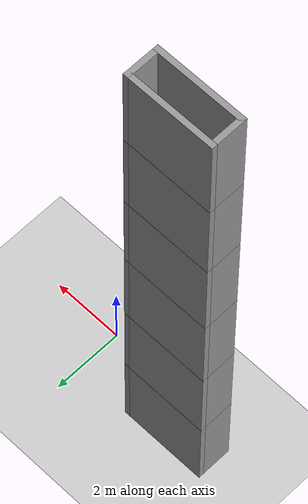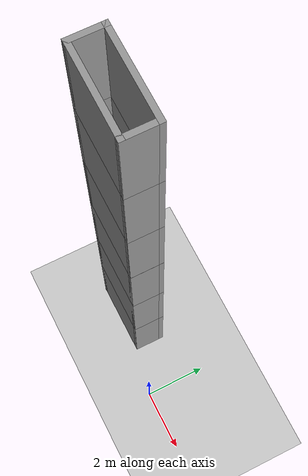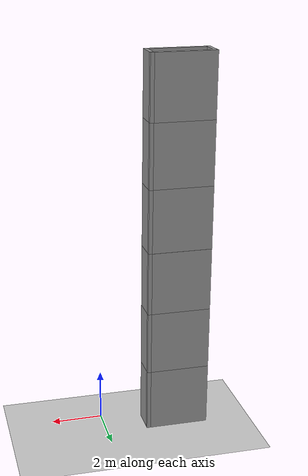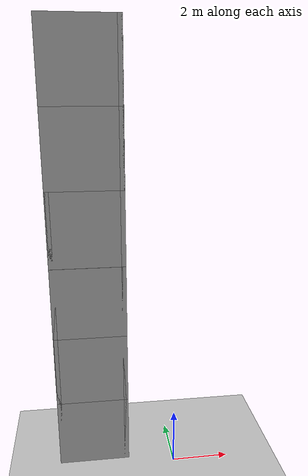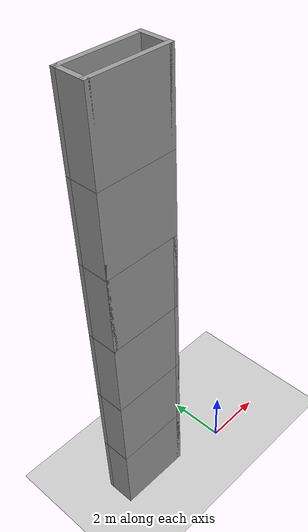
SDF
<sdf version="1.6">
 <world name="default">
  <light name="sun" type="directional">
   <pose>0 0 10 0 -0 0</pose>
   <diffuse>0.8 0.8 0.8 1</diffuse>
   <specular>0.1 0.1 0.1 1</specular>
   <attenuation>
    <range>1000</range>
    <constant>0.9</constant>
    <linear>0.01</linear>
    <quadratic>0.001</quadratic>
   </attenuation>
   <direction>-0.5 0.5 -1</direction>
  </light>
  <model name="ground_plane">
   <static>1</static>
   <link name="link">
    <collision name="collision">
     <geometry><plane><normal>0 0 1</normal><size>100 100</size></plane></geometry>
     <surface><friction><ode><mu>100</mu><mu2>50</mu2></ode></friction></surface>
    </collision>
    <visual name="visual">
     <cast_shadows>0</cast_shadows>
     <geometry><plane><normal>0 0 1</normal><size>100 100</size></plane></geometry>
     <material>
      <script><uri>file://media/materials/scripts/gazebo.material</uri><name>Gazebo/Grey</name></script>
     </material>
    </visual>
   </link>
  </model>
  <gravity>0 0 -9.8</gravity>
  <magnetic_field>6e-06 2.3e-05 -4.2e-05</magnetic_field>
  <atmosphere type="adiabatic"/>
  <physics name="default_physics" default="0" type="ode">
   <max_step_size>0.001</max_step_size>
   <real_time_factor>1</real_time_factor>
   <real_time_update_rate>1000</real_time_update_rate>
  </physics>
  <scene><ambient>0.4 0.4 0.4 1</ambient><background>0.7 0.7 0.7 1</background><shadows>1</shadows></scene>
  <spherical_coordinates>
   <surface_model>EARTH_WGS84</surface_model>
   <latitude_deg>0</latitude_deg>
   <longitude_deg>0</longitude_deg>
   <elevation>0</elevation>
   <heading_deg>0</heading_deg>
  </spherical_coordinates>
  <model name="column25">
   <pose>-2.86373 0.823993 0 0 -0 0</pose>
   <link name="Wall_0">
    <collision name="Wall_0_Collision">
     <geometry><box><size>2.5 0.15 2.5</size></box></geometry>
     <pose>0 0 1.25 0 -0 0</pose>
    </collision>
    <visual name="Wall_0_Visual">
     <pose>0 0 1.25 0 -0 0</pose>
     <geometry><box><size>2.5 0.15 2.5</size></box></geometry>
     <material>
      <script><uri>file://media/materials/scripts/gazebo.material</uri><name>Gazebo/Grey</name></script>
      <ambient>1 1 1 1</ambient>
     </material>
    </visual>
    <pose>0 -0.425 0 0 -0 0</pose>
   </link>
   <link name="Wall_1">
    <collision name="Wall_1_Collision">
     <geometry><box><size>1 0.15 2.5</size></box></geometry>
     <pose>0 0 1.25 0 -0 0</pose>
    </collision>
    <visual name="Wall_1_Visual">
     <pose>0 0 1.25 0 -0 0</pose>
     <geometry><box><size>1 0.15 2.5</size></box></geometry>
     <material>
      <script><uri>file://media/materials/scripts/gazebo.material</uri><name>Gazebo/Grey</name></script>
      <ambient>1 1 1 1</ambient>
     </material>
    </visual>
    <pose>1.175 0 0 0 -0 1.5708</pose>
   </link>
   <link name="Wall_2">
    <collision name="Wall_2_Collision">
     <geometry><box><size>2.5 0.15 2.5</size></box></geometry>
     <pose>0 0 1.25 0 -0 0</pose>
    </collision>
    <visual name="Wall_2_Visual">
     <pose>0 0 1.25 0 -0 0</pose>
     <geometry><box><size>2.5 0.15 2.5</size></box></geometry>
     <material>
      <script><uri>file://media/materials/scripts/gazebo.material</uri><name>Gazebo/Grey</name></script>
      <ambient>1 1 1 1</ambient>
     </material>
    </visual>
    <pose>0 0.425 0 0 -0 3.14159</pose>
   </link>
   <link name="Wall_3">
    <collision name="Wall_3_Collision">
     <geometry><box><size>1 0.15 2.5</size></box></geometry>
     <pose>0 0 1.25 0 -0 0</pose>
    </collision>
    <visual name="Wall_3_Visual">
     <pose>0 0 1.25 0 -0 0</pose>
     <geometry><box><size>1 0.15 2.5</size></box></geometry>
     <material>
      <script><uri>file://media/materials/scripts/gazebo.material</uri><name>Gazebo/Grey</name></script>
      <ambient>1 1 1 1</ambient>
     </material>
    </visual>
    <pose>-1.175 0 0 0 0 -1.5708</pose>
   </link>
   <static>1</static>
  </model>
  <model name="column25_clone">
   <pose>-2.86373 0.823993 2.5 0 -0 0</pose>
   <link name="Wall_0">
    <collision name="Wall_0_Collision">
     <geometry><box><size>2.5 0.15 2.5</size></box></geometry>
     <pose>0 0 1.25 0 -0 0</pose>
    </collision>
    <visual name="Wall_0_Visual">
     <pose>0 0 1.25 0 -0 0</pose>
     <geometry><box><size>2.5 0.15 2.5</size></box></geometry>
     <material>
      <script><uri>file://media/materials/scripts/gazebo.material</uri><name>Gazebo/Grey</name></script>
      <ambient>1 1 1 1</ambient>
     </material>
    </visual>
    <pose>0 -0.425 0 0 -0 0</pose>
   </link>
   <link name="Wall_1">
    <collision name="Wall_1_Collision">
     <geometry><box><size>1 0.15 2.5</size></box></geometry>
     <pose>0 0 1.25 0 -0 0</pose>
    </collision>
    <visual name="Wall_1_Visual">
     <pose>0 0 1.25 0 -0 0</pose>
     <geometry><box><size>1 0.15 2.5</size></box></geometry>
     <material>
      <script><uri>file://media/materials/scripts/gazebo.material</uri><name>Gazebo/Grey</name></script>
      <ambient>1 1 1 1</ambient>
     </material>
    </visual>
    <pose>1.175 0 0 0 -0 1.5708</pose>
   </link>
   <link name="Wall_2">
    <collision name="Wall_2_Collision">
     <geometry><box><size>2.5 0.15 2.5</size></box></geometry>
     <pose>0 0 1.25 0 -0 0</pose>
    </collision>
    <visual name="Wall_2_Visual">
     <pose>0 0 1.25 0 -0 0</pose>
     <geometry><box><size>2.5 0.15 2.5</size></box></geometry>
     <material>
      <script><uri>file://media/materials/scripts/gazebo.material</uri><name>Gazebo/Grey</name></script>
      <ambient>1 1 1 1</ambient>
     </material>
    </visual>
    <pose>0 0.425 0 0 -0 3.14159</pose>
   </link>
   <link name="Wall_3">
    <collision name="Wall_3_Collision">
     <geometry><box><size>1 0.15 2.5</size></box></geometry>
     <pose>0 0 1.25 0 -0 0</pose>
    </collision>
    <visual name="Wall_3_Visual">
     <pose>0 0 1.25 0 -0 0</pose>
     <geometry><box><size>1 0.15 2.5</size></box></geometry>
     <material>
      <script><uri>file://media/materials/scripts/gazebo.material</uri><name>Gazebo/Grey</name></script>
      <ambient>1 1 1 1</ambient>
     </material>
    </visual>
    <pose>-1.175 0 0 0 0 -1.5708</pose>
   </link>
   <static>1</static>
  </model>
  <model name="column25_clone_clone">
   <pose>-2.86373 0.823993 5 0 -0 0</pose>
   <link name="Wall_0">
    <collision name="Wall_0_Collision">
     <geometry><box><size>2.5 0.15 2.5</size></box></geometry>
     <pose>0 0 1.25 0 -0 0</pose>
    </collision>
    <visual name="Wall_0_Visual">
     <pose>0 0 1.25 0 -0 0</pose>
     <geometry><box><size>2.5 0.15 2.5</size></box></geometry>
     <material>
      <script><uri>file://media/materials/scripts/gazebo.material</uri><name>Gazebo/Grey</name></script>
      <ambient>1 1 1 1</ambient>
     </material>
    </visual>
    <pose>0 -0.425 0 0 -0 0</pose>
   </link>
   <link name="Wall_1">
    <collision name="Wall_1_Collision">
     <geometry><box><size>1 0.15 2.5</size></box></geometry>
     <pose>0 0 1.25 0 -0 0</pose>
    </collision>
    <visual name="Wall_1_Visual">
     <pose>0 0 1.25 0 -0 0</pose>
     <geometry><box><size>1 0.15 2.5</size></box></geometry>
     <material>
      <script><uri>file://media/materials/scripts/gazebo.material</uri><name>Gazebo/Grey</name></script>
      <ambient>1 1 1 1</ambient>
     </material>
    </visual>
    <pose>1.175 0 0 0 -0 1.5708</pose>
   </link>
   <link name="Wall_2">
    <collision name="Wall_2_Collision">
     <geometry><box><size>2.5 0.15 2.5</size></box></geometry>
     <pose>0 0 1.25 0 -0 0</pose>
    </collision>
    <visual name="Wall_2_Visual">
     <pose>0 0 1.25 0 -0 0</pose>
     <geometry><box><size>2.5 0.15 2.5</size></box></geometry>
     <material>
      <script><uri>file://media/materials/scripts/gazebo.material</uri><name>Gazebo/Grey</name></script>
      <ambient>1 1 1 1</ambient>
     </material>
    </visual>
    <pose>0 0.425 0 0 -0 3.14159</pose>
   </link>
   <link name="Wall_3">
    <collision name="Wall_3_Collision">
     <geometry><box><size>1 0.15 2.5</size></box></geometry>
     <pose>0 0 1.25 0 -0 0</pose>
    </collision>
    <visual name="Wall_3_Visual">
     <pose>0 0 1.25 0 -0 0</pose>
     <geometry><box><size>1 0.15 2.5</size></box></geometry>
     <material>
      <script><uri>file://media/materials/scripts/gazebo.material</uri><name>Gazebo/Grey</name></script>
      <ambient>1 1 1 1</ambient>
     </material>
    </visual>
    <pose>-1.175 0 0 0 0 -1.5708</pose>
   </link>
   <static>1</static>
  </model>
  <model name="column25_clone_clone_clone">
   <pose>-2.86431 0.823106 7.50364 0 -0 0</pose>
   <link name="Wall_0">
    <collision name="Wall_0_Collision">
     <geometry><box><size>2.5 0.15 2.5</size></box></geometry>
     <pose>0 0 1.25 0 -0 0</pose>
    </collision>
    <visual name="Wall_0_Visual">
     <pose>0 0 1.25 0 -0 0</pose>
     <geometry><box><size>2.5 0.15 2.5</size></box></geometry>
     <material>
      <script><uri>file://media/materials/scripts/gazebo.material</uri><name>Gazebo/Grey</name></script>
      <ambient>1 1 1 1</ambient>
     </material>
    </visual>
    <pose>0 -0.425 0 0 -0 0</pose>
   </link>
   <link name="Wall_1">
    <collision name="Wall_1_Collision">
     <geometry><box><size>1 0.15 2.5</size></box></geometry>
     <pose>0 0 1.25 0 -0 0</pose>
    </collision>
    <visual name="Wall_1_Visual">
     <pose>0 0 1.25 0 -0 0</pose>
     <geometry><box><size>1 0.15 2.5</size></box></geometry>
     <material>
      <script><uri>file://media/materials/scripts/gazebo.material</uri><name>Gazebo/Grey</name></script>
      <ambient>1 1 1 1</ambient>
     </material>
    </visual>
    <pose>1.175 0 0 0 -0 1.5708</pose>
   </link>
   <link name="Wall_2">
    <collision name="Wall_2_Collision">
     <geometry><box><size>2.5 0.15 2.5</size></box></geometry>
     <pose>0 0 1.25 0 -0 0</pose>
    </collision>
    <visual name="Wall_2_Visual">
     <pose>0 0 1.25 0 -0 0</pose>
     <geometry><box><size>2.5 0.15 2.5</size></box></geometry>
     <material>
      <script><uri>file://media/materials/scripts/gazebo.material</uri><name>Gazebo/Grey</name></script>
      <ambient>1 1 1 1</ambient>
     </material>
    </visual>
    <pose>0 0.425 0 0 -0 3.14159</pose>
   </link>
   <link name="Wall_3">
    <collision name="Wall_3_Collision">
     <geometry><box><size>1 0.15 2.5</size></box></geometry>
     <pose>0 0 1.25 0 -0 0</pose>
    </collision>
    <visual name="Wall_3_Visual">
     <pose>0 0 1.25 0 -0 0</pose>
     <geometry><box><size>1 0.15 2.5</size></box></geometry>
     <material>
      <script><uri>file://media/materials/scripts/gazebo.material</uri><name>Gazebo/Grey</name></script>
      <ambient>1 1 1 1</ambient>
     </material>
    </visual>
    <pose>-1.175 0 0 0 0 -1.5708</pose>
   </link>
   <static>1</static>
  </model>
  <model name="column25_clone_clone_clone_clone">
   <pose>-2.86373 0.823993 10 0 -0 0</pose>
   <link name="Wall_0">
    <collision name="Wall_0_Collision">
     <geometry><box><size>2.5 0.15 2.5</size></box></geometry>
     <pose>0 0 1.25 0 -0 0</pose>
    </collision>
    <visual name="Wall_0_Visual">
     <pose>0 0 1.25 0 -0 0</pose>
     <geometry><box><size>2.5 0.15 2.5</size></box></geometry>
     <material>
      <script><uri>file://media/materials/scripts/gazebo.material</uri><name>Gazebo/Grey</name></script>
      <ambient>1 1 1 1</ambient>
     </material>
    </visual>
    <pose>0 -0.425 0 0 -0 0</pose>
   </link>
   <link name="Wall_1">
    <collision name="Wall_1_Collision">
     <geometry><box><size>1 0.15 2.5</size></box></geometry>
     <pose>0 0 1.25 0 -0 0</pose>
    </collision>
    <visual name="Wall_1_Visual">
     <pose>0 0 1.25 0 -0 0</pose>
     <geometry><box><size>1 0.15 2.5</size></box></geometry>
     <material>
      <script><uri>file://media/materials/scripts/gazebo.material</uri><name>Gazebo/Grey</name></script>
      <ambient>1 1 1 1</ambient>
     </material>
    </visual>
    <pose>1.175 0 0 0 -0 1.5708</pose>
   </link>
   <link name="Wall_2">
    <collision name="Wall_2_Collision">
     <geometry><box><size>2.5 0.15 2.5</size></box></geometry>
     <pose>0 0 1.25 0 -0 0</pose>
    </collision>
    <visual name="Wall_2_Visual">
     <pose>0 0 1.25 0 -0 0</pose>
     <geometry><box><size>2.5 0.15 2.5</size></box></geometry>
     <material>
      <script><uri>file://media/materials/scripts/gazebo.material</uri><name>Gazebo/Grey</name></script>
      <ambient>1 1 1 1</ambient>
     </material>
    </visual>
    <pose>0 0.425 0 0 -0 3.14159</pose>
   </link>
   <link name="Wall_3">
    <collision name="Wall_3_Collision">
     <geometry><box><size>1 0.15 2.5</size></box></geometry>
     <pose>0 0 1.25 0 -0 0</pose>
    </collision>
    <visual name="Wall_3_Visual">
     <pose>0 0 1.25 0 -0 0</pose>
     <geometry><box><size>1 0.15 2.5</size></box></geometry>
     <material>
      <script><uri>file://media/materials/scripts/gazebo.material</uri><name>Gazebo/Grey</name></script>
      <ambient>1 1 1 1</ambient>
     </material>
    </visual>
    <pose>-1.175 0 0 0 0 -1.5708</pose>
   </link>
   <static>1</static>
  </model>
  <model name="column25_clone_clone_clone_clone_clone">
   <pose>-2.86373 0.823993 12.5 0 -0 0</pose>
   <link name="Wall_0">
    <collision name="Wall_0_Collision">
     <geometry><box><size>2.5 0.15 2.5</size></box></geometry>
     <pose>0 0 1.25 0 -0 0</pose>
    </collision>
    <visual name="Wall_0_Visual">
     <pose>0 0 1.25 0 -0 0</pose>
     <geometry><box><size>2.5 0.15 2.5</size></box></geometry>
     <material>
      <script><uri>file://media/materials/scripts/gazebo.material</uri><name>Gazebo/Grey</name></script>
      <ambient>1 1 1 1</ambient>
     </material>
    </visual>
    <pose>0 -0.425 0 0 -0 0</pose>
   </link>
   <link name="Wall_1">
    <collision name="Wall_1_Collision">
     <geometry><box><size>1 0.15 2.5</size></box></geometry>
     <pose>0 0 1.25 0 -0 0</pose>
    </collision>
    <visual name="Wall_1_Visual">
     <pose>0 0 1.25 0 -0 0</pose>
     <geometry><box><size>1 0.15 2.5</size></box></geometry>
     <material>
      <script><uri>file://media/materials/scripts/gazebo.material</uri><name>Gazebo/Grey</name></script>
      <ambient>1 1 1 1</ambient>
     </material>
    </visual>
    <pose>1.175 0 0 0 -0 1.5708</pose>
   </link>
   <link name="Wall_2">
    <collision name="Wall_2_Collision">
     <geometry><box><size>2.5 0.15 2.5</size></box></geometry>
     <pose>0 0 1.25 0 -0 0</pose>
    </collision>
    <visual name="Wall_2_Visual">
     <pose>0 0 1.25 0 -0 0</pose>
     <geometry><box><size>2.5 0.15 2.5</size></box></geometry>
     <material>
      <script><uri>file://media/materials/scripts/gazebo.material</uri><name>Gazebo/Grey</name></script>
      <ambient>1 1 1 1</ambient>
     </material>
    </visual>
    <pose>0 0.425 0 0 -0 3.14159</pose>
   </link>
   <link name="Wall_3">
    <collision name="Wall_3_Collision">
     <geometry><box><size>1 0.15 2.5</size></box></geometry>
     <pose>0 0 1.25 0 -0 0</pose>
    </collision>
    <visual name="Wall_3_Visual">
     <pose>0 0 1.25 0 -0 0</pose>
     <geometry><box><size>1 0.15 2.5</size></box></geometry>
     <material>
      <script><uri>file://media/materials/scripts/gazebo.material</uri><name>Gazebo/Grey</name></script>
      <ambient>1 1 1 1</ambient>
     </material>
    </visual>
    <pose>-1.175 0 0 0 0 -1.5708</pose>
   </link>
   <static>1</static>
  </model>
 </world>
</sdf>
